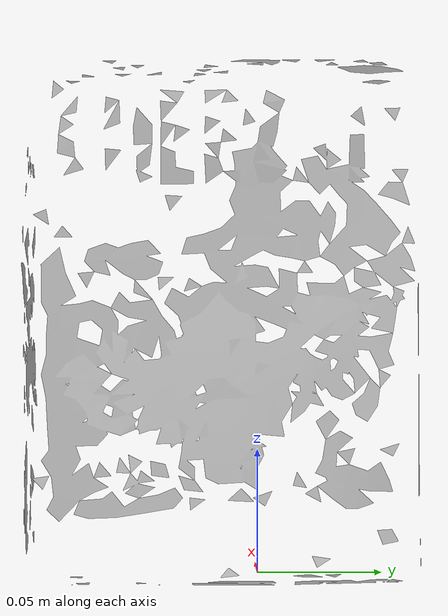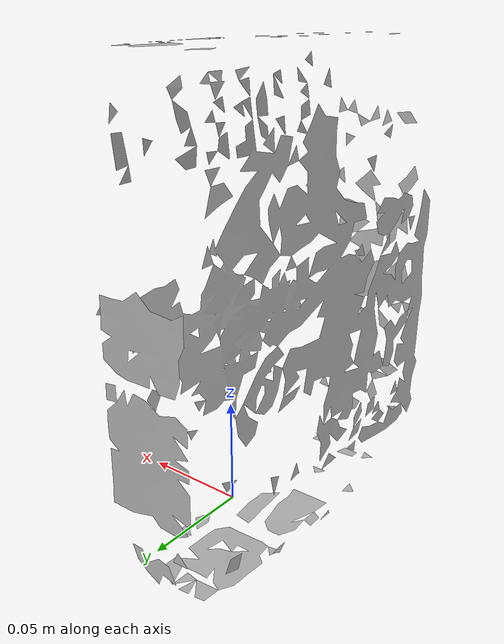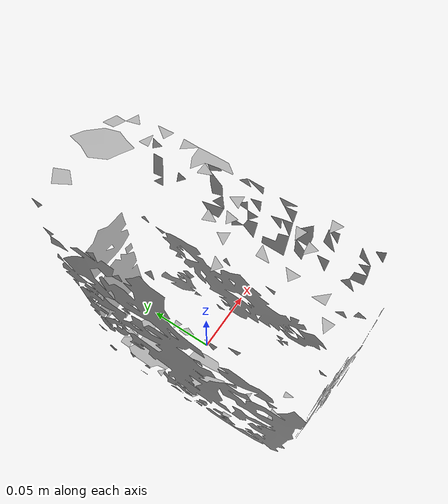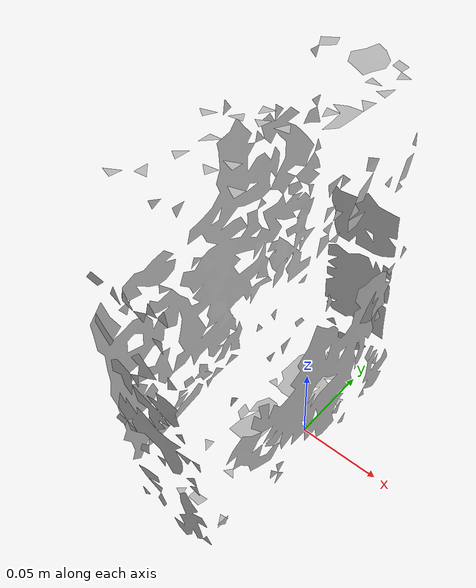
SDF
<?xml version="1.0" ?>
<sdf version="1.4">
  <model name='ycb_003_cracker_box'>
    <link name='body'>
      <inertial>
        <mass>0.411</mass>
        <pose>-0.0148535577968 -0.0142050544666 0.10220486839 0 0 0</pose>
        <inertia>
          <ixx>0.0023954891543</ixx>
          <ixy>-4.99469572044e-07</ixy>
          <ixz>1.52866735549e-05</ixz>
          <iyy>0.00168217166772</iyy>
          <iyz>5.45359647538e-06</iyz>
          <izz>0.000999504278105</izz>
        </inertia>
      </inertial>
      <visual name='ycb_003_cracker_box_visual'>
        <pose>0 0 0 0 0 0</pose>
        <geometry>
          <mesh>
            <uri>model://ycb_003_cracker_box/meshes/textured.dae</uri>
          </mesh>
        </geometry>
      </visual>
      <collision name='ycb_003_cracker_box_collision'>
        <pose>0 0 0 0 0 0</pose>
        <geometry>
          <mesh>
            <uri>model://ycb_003_cracker_box/meshes/nontextured.stl</uri>
          </mesh>
        </geometry>
        <max_contacts>10</max_contacts>
      </collision>
    </link>
  </model>
</sdf>
